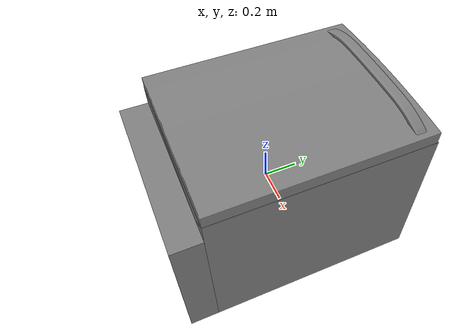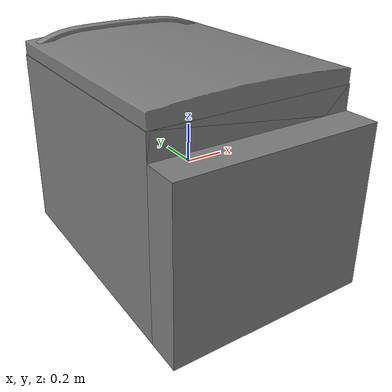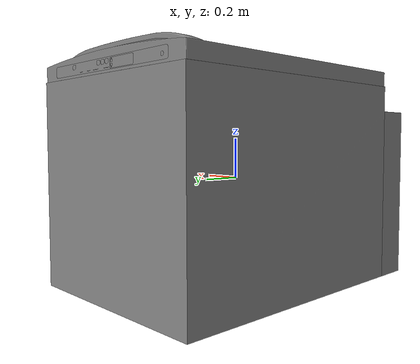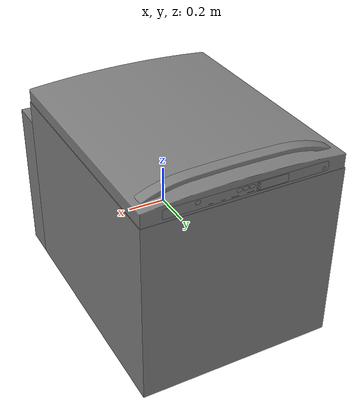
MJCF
<?xml version='1.0' encoding='UTF-8'?>
<mujoco model="articulated_object">
  <compiler angle="radian"/>
  <asset>
    <mesh name="new-2" content_type="model/obj" file="/home/blackbird/GYH/out_pm/Dishwasher/11622/objs/new-2.obj"/>
    <mesh name="original-16" content_type="model/obj" file="/home/blackbird/GYH/out_pm/Dishwasher/11622/objs/original-16.obj"/>
    <mesh name="new-0" content_type="model/obj" file="/home/blackbird/GYH/out_pm/Dishwasher/11622/objs/new-0.obj"/>
    <mesh name="new-3" content_type="model/obj" file="/home/blackbird/GYH/out_pm/Dishwasher/11622/objs/new-3.obj"/>
    <mesh name="original-3" content_type="model/obj" file="/home/blackbird/GYH/out_pm/Dishwasher/11622/objs/original-3.obj"/>
    <mesh name="original-9" content_type="model/obj" file="/home/blackbird/GYH/out_pm/Dishwasher/11622/objs/original-9.obj"/>
    <mesh name="original-17" content_type="model/obj" file="/home/blackbird/GYH/out_pm/Dishwasher/11622/objs/original-17.obj"/>
    <mesh name="original-14" content_type="model/obj" file="/home/blackbird/GYH/out_pm/Dishwasher/11622/objs/original-14.obj"/>
    <mesh name="original-15" content_type="model/obj" file="/home/blackbird/GYH/out_pm/Dishwasher/11622/objs/original-15.obj"/>
    <mesh name="original-8" content_type="model/obj" file="/home/blackbird/GYH/out_pm/Dishwasher/11622/objs/original-8.obj"/>
    <mesh name="original-7" content_type="model/obj" file="/home/blackbird/GYH/out_pm/Dishwasher/11622/objs/original-7.obj"/>
    <mesh name="original-6" content_type="model/obj" file="/home/blackbird/GYH/out_pm/Dishwasher/11622/objs/original-6.obj"/>
    <mesh name="original-5" content_type="model/obj" file="/home/blackbird/GYH/out_pm/Dishwasher/11622/objs/original-5.obj"/>
    <mesh name="original-1" content_type="model/obj" file="/home/blackbird/GYH/out_pm/Dishwasher/11622/objs/original-1.obj"/>
    <mesh name="original-18" content_type="model/obj" file="/home/blackbird/GYH/out_pm/Dishwasher/11622/objs/original-18.obj"/>
    <mesh name="original-10" content_type="model/obj" file="/home/blackbird/GYH/out_pm/Dishwasher/11622/objs/original-10.obj"/>
    <mesh name="original-13" content_type="model/obj" file="/home/blackbird/GYH/out_pm/Dishwasher/11622/objs/original-13.obj"/>
    <mesh name="original-12" content_type="model/obj" file="/home/blackbird/GYH/out_pm/Dishwasher/11622/objs/original-12.obj"/>
    <mesh name="original-11" content_type="model/obj" file="/home/blackbird/GYH/out_pm/Dishwasher/11622/objs/original-11.obj"/>
  </asset>
  <worldbody>
    <body name="base">
      <inertial pos="0 0 0" mass="0.1" diaginertia="0.001 0.001 0.001"/>
      <geom type="mesh" mesh="new-0"/>
      <geom type="mesh" mesh="new-3"/>
      <geom type="mesh" mesh="original-3"/>
      <body name="door" pos="0.508704 -0.53191 0.44953">
        <inertial pos="-0.508704 0.53191 -0.44953" mass="2" diaginertia="0.02 0.02 0.02"/>
        <joint name="joint_door" pos="0 0 0" axis="1 0 0" range="0 1.5708" actuatorfrcrange="-10 10"/>
        <geom pos="-0.508704 0.53191 -0.44953" quat="1 0 0 0" type="mesh" mesh="new-2"/>
        <geom pos="-0.508704 0.53191 -0.44953" quat="1 0 0 0" type="mesh" mesh="original-16"/>
        <body name="base_link">
          <inertial pos="-0.508704 0.53191 -0.44953" mass="10" diaginertia="0.1 0.1 0.1"/>
          <geom pos="-0.508704 0.53191 -0.44953" quat="1 0 0 0" type="mesh" mesh="original-9"/>
          <geom pos="-0.508704 0.53191 -0.44953" type="mesh" mesh="original-17"/>
          <geom pos="-0.508704 0.53191 -0.44953" type="mesh" mesh="original-14"/>
          <geom pos="-0.508704 0.53191 -0.44953" type="mesh" mesh="original-15"/>
          <geom pos="-0.508704 0.53191 -0.44953" quat="1 0 0 0" type="mesh" mesh="original-8"/>
          <geom pos="-0.508704 0.53191 -0.44953" quat="1 0 0 0" type="mesh" mesh="original-7"/>
          <geom pos="-0.508704 0.53191 -0.44953" quat="1 0 0 0" type="mesh" mesh="original-6"/>
          <geom pos="-0.508704 0.53191 -0.44953" quat="1 0 0 0" type="mesh" mesh="original-5"/>
          <geom pos="-0.508704 0.53191 -0.44953" quat="1 0 0 0" type="mesh" mesh="original-1"/>
          <geom pos="-0.508704 0.53191 -0.44953" type="mesh" mesh="original-18"/>
          <geom pos="-0.508704 0.53191 -0.44953" type="mesh" mesh="original-10"/>
          <geom pos="-0.508704 0.53191 -0.44953" type="mesh" mesh="original-13"/>
          <geom pos="-0.508704 0.53191 -0.44953" type="mesh" mesh="original-12"/>
          <geom pos="-0.508704 0.53191 -0.44953" type="mesh" mesh="original-11"/>
        </body>
      </body>
    </body>
  </worldbody>
</mujoco>
